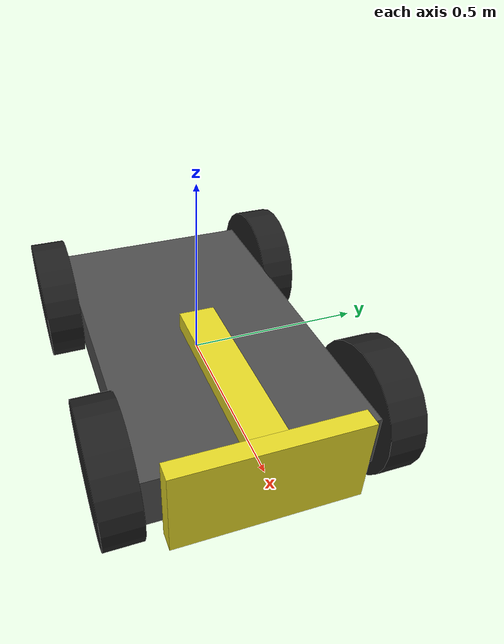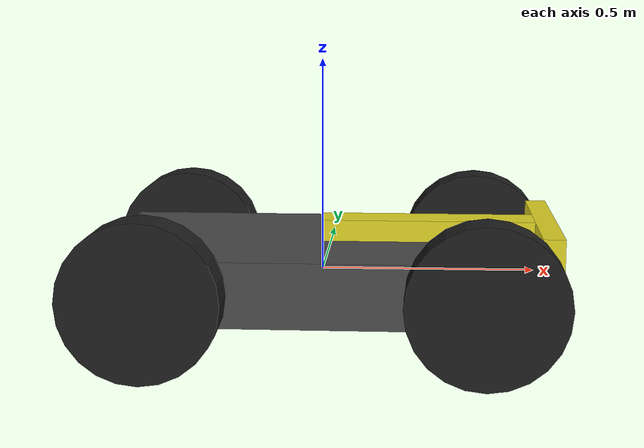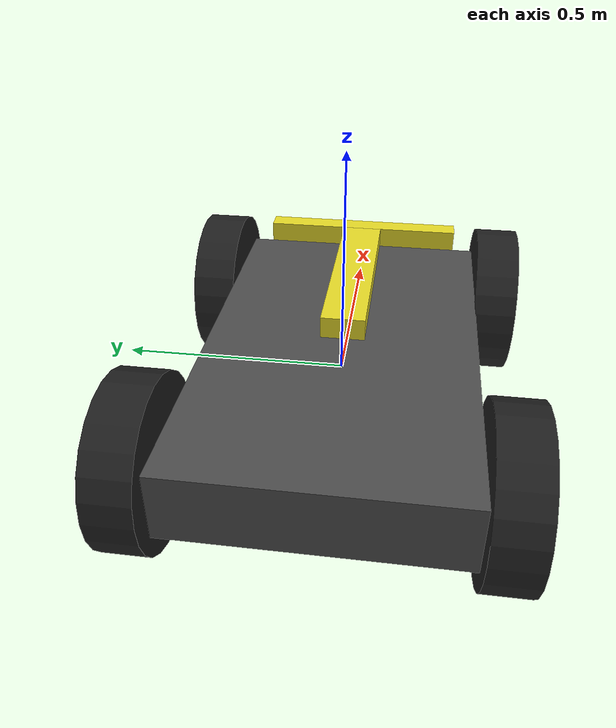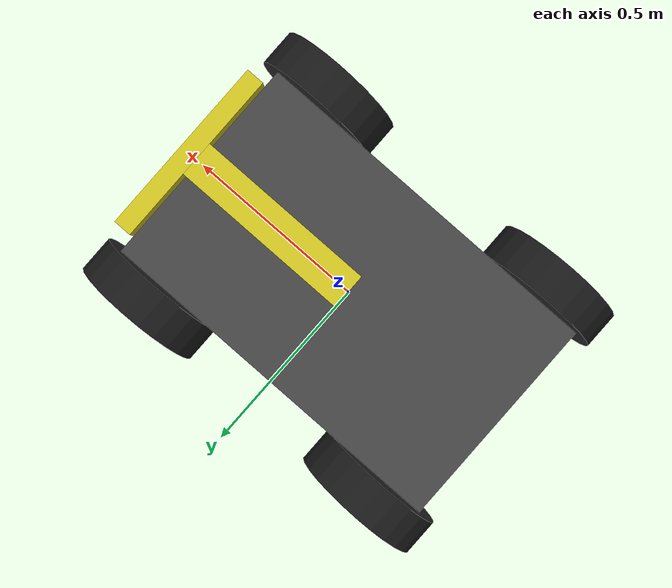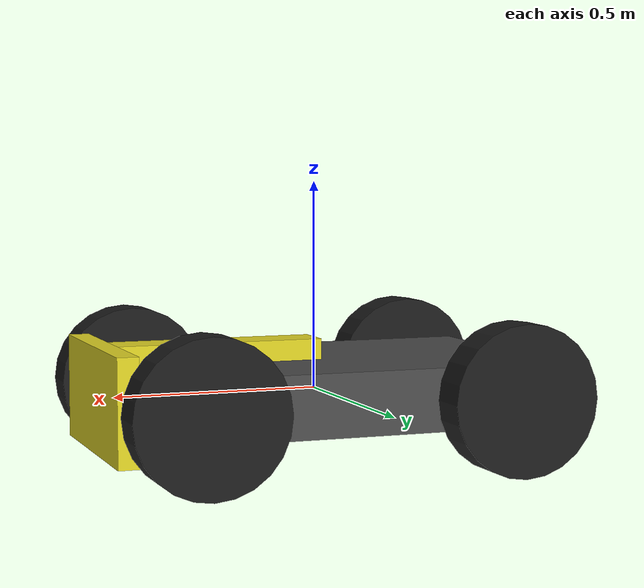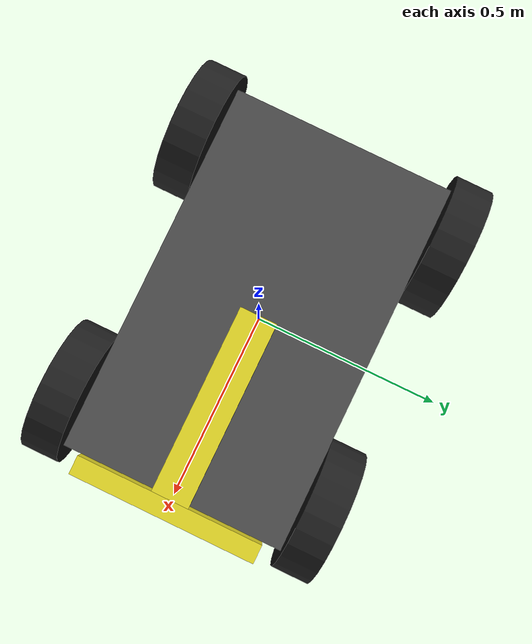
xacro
<?xml version="1.0"?>

<robot name="ugv" xmlns:xacro="http://www.ros.org/wiki/xacro">
  <xacro:arg name="robot_ns" default=""/>
  <xacro:property name="PI" value="3.141592653589797"/>
  <xacro:property name="chassis_l" value="1.0"/>
  <xacro:property name="chassis_w" value="0.6"/>
  <xacro:property name="chassis_h" value="0.15"/>
  <xacro:property name="chassis_m" value="50"/>
  <xacro:property name="wheel_r" value="0.18"/>
  <xacro:property name="wheel_w" value="0.1"/>
  <xacro:property name="wheel_m" value="2.0"/>
  <xacro:property name="wheel_base" value="0.75"/>
  <xacro:property name="wheel_track" value="0.7"/>
  <xacro:property name="cover_l" value="0.5"/>
  <xacro:property name="cover_w" value="0.1"/>
  <xacro:property name="cover_h" value="0.05"/>
  <xacro:property name="cover_m" value="1"/>
  <xacro:property name="bumper_l" value="0.05"/>
  <xacro:property name="bumper_w" value="0.5"/>
  <xacro:property name="bumper_h" value="0.25"/>
  <xacro:property name="bumper_m" value="1"/>

  <link name="link_chassis">
    <visual>
      <origin xyz="0 0 0" rpy=" 0 0 0"/>
      <geometry>
        <box size="${chassis_l} ${chassis_w} ${chassis_h}"/>
      </geometry>
    </visual>
    <collision>
      <origin xyz="0 0 0" rpy="0 0 0"/>
      <geometry>
        <box size="${chassis_l} ${chassis_w} ${chassis_h}"/>
      </geometry>
    </collision>
    <inertial>
      <mass value="${chassis_m}"/>
      <origin xyz="0 0 0" rpy="0 0 0"/>
      <inertia ixx="${(1/12)*chassis_m*(chassis_w*chassis_w+chassis_h*chassis_h)}" ixy="0" ixz="0" iyy="${(1/12)*chassis_m*(chassis_l*chassis_l+chassis_h*chassis_h)}" iyz="0" izz="${(1/12)*chassis_m*(chassis_l*chassis_l+chassis_w*chassis_w)}"/>
    </inertial>
  </link>

  <joint name="joint_chassis_cover" type="fixed">
    <origin xyz="${chassis_l/4} 0 ${chassis_h/2}" rpy="0 0 0"/>
    <parent link="link_chassis"/>
    <child link="link_cover"/>
  </joint>
  <link name="link_cover">
    <visual>
      <origin xyz="0 0 ${cover_h/2}" rpy="0 0 0"/>
      <geometry>
        <box size="${cover_l} ${cover_w} ${cover_h}"/>
      </geometry>
    </visual>
    <collision>
      <origin xyz="0 0 ${cover_h/2}" rpy="0 0 0"/>
      <geometry>
        <box size="${cover_l} ${cover_w} ${cover_h}"/>
      </geometry>
    </collision>
    <inertial>
      <mass value="${cover_m}"/>
      <origin xyz="0 0 0" rpy="0 0 0"/>
      <inertia ixx="${(1/12)*cover_m*(cover_w*cover_w+cover_h*cover_h)}" ixy="0" ixz="0" iyy="${(1/12)*cover_m*(cover_l*cover_l+cover_h*cover_h)}" iyz="0" izz="${(1/12)*cover_m*(cover_l*cover_l+cover_w*cover_w)}"/>
    </inertial>
  </link>

  <joint name="joint_chassis_bumper" type="fixed">
    <origin xyz="${chassis_l/2} 0 0" rpy="0 0 0"/>
    <parent link="link_chassis"/>
    <child link="link_bumper"/>
  </joint>
  <link name="link_bumper">
    <visual>
      <origin xyz="${bumper_l/2} 0 0" rpy="0 0 0"/>
      <geometry>
        <box size="${bumper_l} ${bumper_w} ${bumper_h}"/>
      </geometry>
    </visual>
    <collision>
      <origin xyz="${bumper_l/2} 0 0" rpy="0 0 0"/>
      <geometry>
        <box size="${bumper_l} ${bumper_w} ${bumper_h}"/>
      </geometry>
    </collision>
    <inertial>
      <mass value="${bumper_m}"/>
      <origin xyz="0 0 0" rpy="0 0 0"/>
      <inertia ixx="${(1/12)*bumper_m*(bumper_w*bumper_w+bumper_h*bumper_h)}" ixy="0" ixz="0" iyy="${(1/12)*bumper_m*(bumper_l*bumper_l+bumper_h*bumper_h)}" iyz="0" izz="${(1/12)*bumper_m*(bumper_l*bumper_l+bumper_w*bumper_w)}"/>
    </inertial>
  </link>

  <joint name="joint_chassis_wheel_lb" type="continuous">
    <origin xyz="-${wheel_base/2} ${wheel_track/2} 0" rpy="0 0 0"/>
    <parent link="link_chassis"/>
    <child link="link_wheel_lb"/>
    <axis xyz="0 1 0" rpy="0 0 0"/>
  </joint>
  <link name="link_wheel_lb">
    <visual>
      <origin xyz="0 0 0" rpy="${PI/2} 0 0"/>
      <geometry>
        <cylinder length="${wheel_w}" radius="${wheel_r}"/>
      </geometry>
    </visual>
    <collision>
      <origin xyz="0 0 0" rpy="${PI/2} 0 0"/>
      <geometry>
        <cylinder length="${wheel_w}" radius="${wheel_r}"/>
      </geometry>
    </collision>
    <inertial>
      <mass value="${wheel_m}"/>
      <origin xyz="0 0 0" rpy="${PI/2} 0 0"/>
      <inertia ixx="${(1/12)*wheel_m*(3*wheel_r*wheel_r+wheel_w*wheel_w)}" ixy="0" ixz="0" iyy="${(1/12)*wheel_m*(3*wheel_r*wheel_r+wheel_w*wheel_w)}" iyz="0" izz="${(1/2)*wheel_m*wheel_r*wheel_r}"/>
    </inertial>
  </link>

  <joint name="joint_chassis_wheel_rb" type="continuous">
    <origin xyz="-${wheel_base/2} -${wheel_track/2} 0" rpy="0 0 0"/>
    <parent link="link_chassis"/>
    <child link="link_wheel_rb"/>
    <axis xyz="0 1 0" rpy="0 0 0"/>
  </joint>
  <link name="link_wheel_rb">
    <visual>
      <origin xyz="0 0 0" rpy="${PI/2} 0 0"/>
      <geometry>
        <cylinder length="${wheel_w}" radius="${wheel_r}"/>
      </geometry>
    </visual>
    <collision>
      <origin xyz="0 0 0" rpy="${PI/2} 0 0"/>
      <geometry>
        <cylinder length="${wheel_w}" radius="${wheel_r}"/>
      </geometry>
    </collision>
    <inertial>
      <mass value="${wheel_m}"/>
      <origin xyz="0 0 0" rpy="${PI/2} 0 0"/>
      <inertia ixx="${(1/12)*wheel_m*(3*wheel_r*wheel_r+wheel_w*wheel_w)}" ixy="0" ixz="0" iyy="${(1/12)*wheel_m*(3*wheel_r*wheel_r+wheel_w*wheel_w)}" iyz="0" izz="${(1/2)*wheel_m*wheel_r*wheel_r}"/>
    </inertial>
  </link>

  <joint name="joint_chassis_wheel_lf" type="continuous">
    <origin xyz="${wheel_base/2} ${wheel_track/2} 0" rpy="0 0 0"/>
    <parent link="link_chassis"/>
    <child link="link_wheel_lf"/>
    <axis xyz="0 1 0" rpy="0 0 0"/>
  </joint>
  <link name="link_wheel_lf">
    <visual>
      <origin xyz="0 0 0" rpy="${PI/2} 0 0"/>
      <geometry>
        <cylinder length="${wheel_w}" radius="${wheel_r}"/>
      </geometry>
    </visual>
    <collision>
      <origin xyz="0 0 0" rpy="${PI/2} 0 0"/>
      <geometry>
        <cylinder length="${wheel_w}" radius="${wheel_r}"/>
      </geometry>
    </collision>
    <inertial>
      <mass value="${wheel_m}"/>
      <origin xyz="0 0 0" rpy="${PI/2} 0 0"/>
      <inertia ixx="${(1/12)*wheel_m*(3*wheel_r*wheel_r+wheel_w*wheel_w)}" ixy="0" ixz="0" iyy="${(1/12)*wheel_m*(3*wheel_r*wheel_r+wheel_w*wheel_w)}" iyz="0" izz="${(1/2)*wheel_m*wheel_r*wheel_r}"/>
    </inertial>
  </link>

  <joint name="joint_chassis_wheel_rf" type="continuous">
    <origin xyz="${wheel_base/2} -${wheel_track/2} 0" rpy="0 0 0"/>
    <parent link="link_chassis"/>
    <child link="link_wheel_rf"/>
    <axis xyz="0 1 0" rpy="0 0 0"/>
  </joint>
  <link name="link_wheel_rf">
    <visual>
      <origin xyz="0 0 0" rpy="${PI/2} 0 0"/>
      <geometry>
        <cylinder length="${wheel_w}" radius="${wheel_r}"/>
      </geometry>
    </visual>
    <collision>
      <origin xyz="0 0 0" rpy="${PI/2} 0 0"/>
      <geometry>
        <cylinder length="${wheel_w}" radius="${wheel_r}"/>
      </geometry>
    </collision>
    <inertial>
      <mass value="${wheel_m}"/>
      <origin xyz="0 0 0" rpy="${PI/2} 0 0"/>
      <inertia ixx="${(1/12)*wheel_m*(3*wheel_r*wheel_r+wheel_w*wheel_w)}" ixy="0" ixz="0" iyy="${(1/12)*wheel_m*(3*wheel_r*wheel_r+wheel_w*wheel_w)}" iyz="0" izz="${(1/2)*wheel_m*wheel_r*wheel_r}"/>
    </inertial>
  </link>

  <gazebo>
    <plugin name="skid_steer_drive_controller" filename="libgazebo_ros_skid_steer_drive.so">
      <updateRate>100.0</updateRate>
      <topicName>cmd_vel</topicName>
      <robotNamespace>$(arg robot_ns)/</robotNamespace>
      <leftFrontJoint>joint_chassis_wheel_lf</leftFrontJoint>
      <rightFrontJoint>joint_chassis_wheel_rf</rightFrontJoint>
      <leftRearJoint>joint_chassis_wheel_lb</leftRearJoint>
      <rightRearJoint>joint_chassis_wheel_rb</rightRearJoint>
      <wheelSeparation>${wheel_base}</wheelSeparation>
      <wheelDiameter>2*${wheel_r}</wheelDiameter>
      <torque>100</torque>
      <robotBaseFrame>link_chassis</robotBaseFrame>
      <odometryFrame>odom</odometryFrame>
      <odometryTopic>odom</odometryTopic>
      <publish_odom>true</publish_odom>
      <publish_odom_tf>false</publish_odom_tf>
      <broadcastTF>true</broadcastTF>
      <covariance_x>0.001</covariance_x>
      <covariance_y>0.001</covariance_y>
      <covariance_yaw>0.01</covariance_yaw>
    </plugin>
  </gazebo>

  <gazebo reference="link_chassis">
    <material>Gazebo/DarkGrey</material>
  </gazebo>
  <gazebo reference="link_cover">
    <material>Gazebo/Yellow</material>
  </gazebo>
  <gazebo reference="link_bumper">
    <material>Gazebo/Yellow</material>
  </gazebo>

  <gazebo reference="link_wheel_lf">
    <material>Gazebo/Black</material>
  </gazebo>
  <gazebo reference="link_wheel_lb">
    <material>Gazebo/Black</material>
  </gazebo>
  <gazebo reference="link_wheel_rf">
    <material>Gazebo/Black</material>
  </gazebo>
  <gazebo reference="link_wheel_rb">
    <material>Gazebo/Black</material>
  </gazebo>

</robot>
